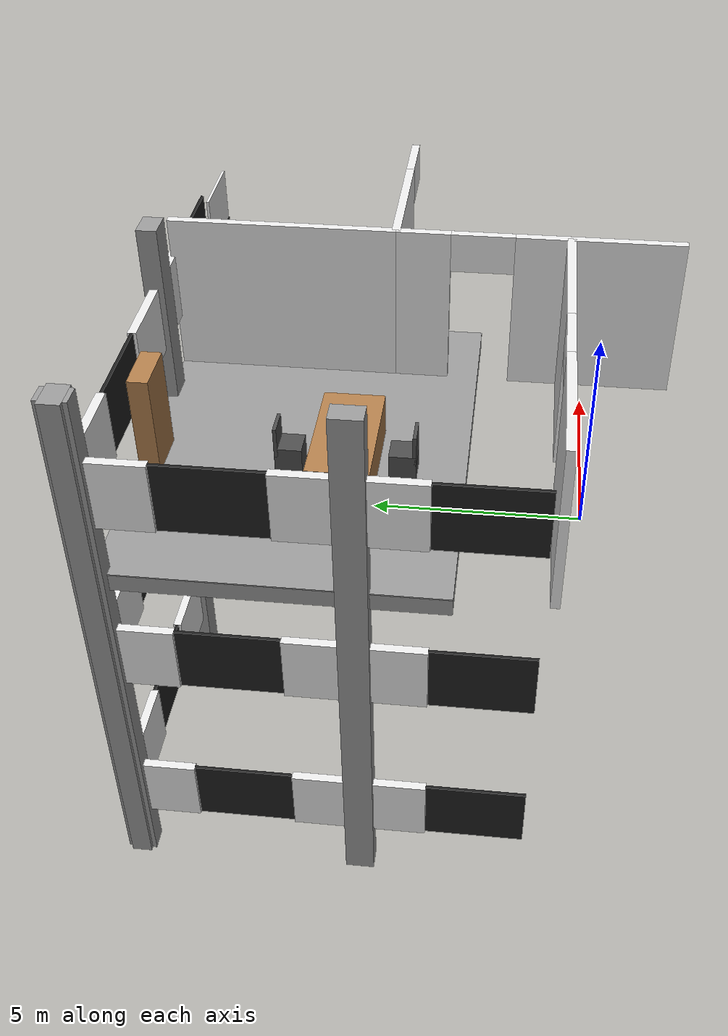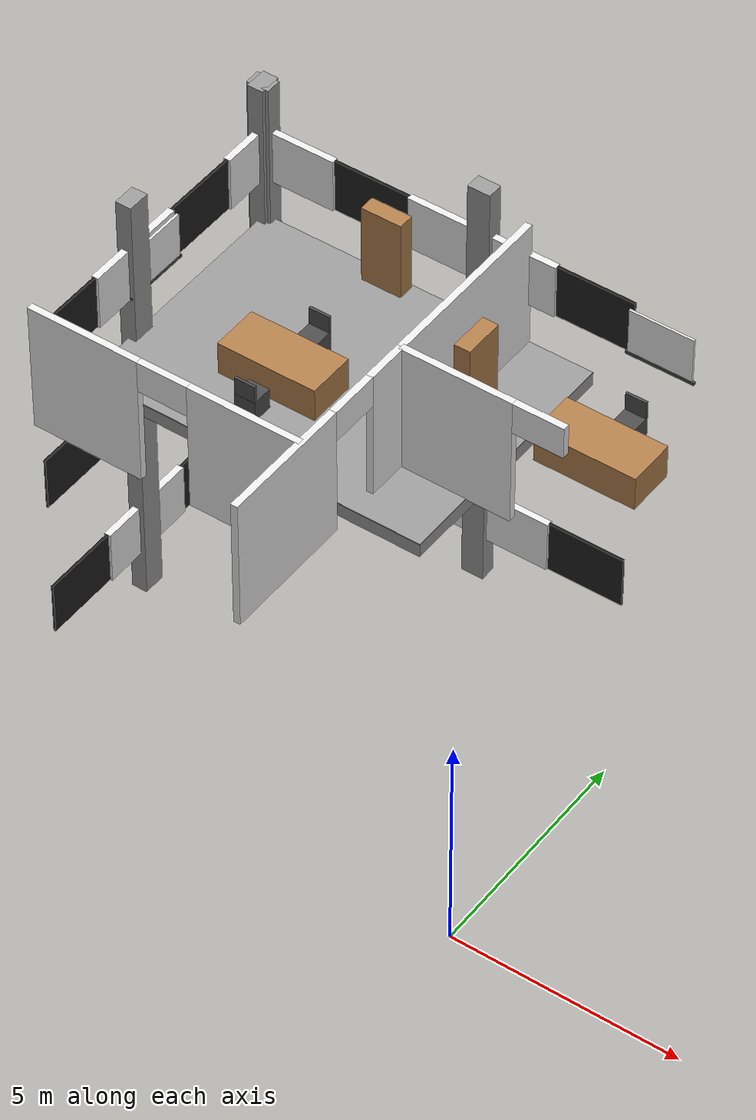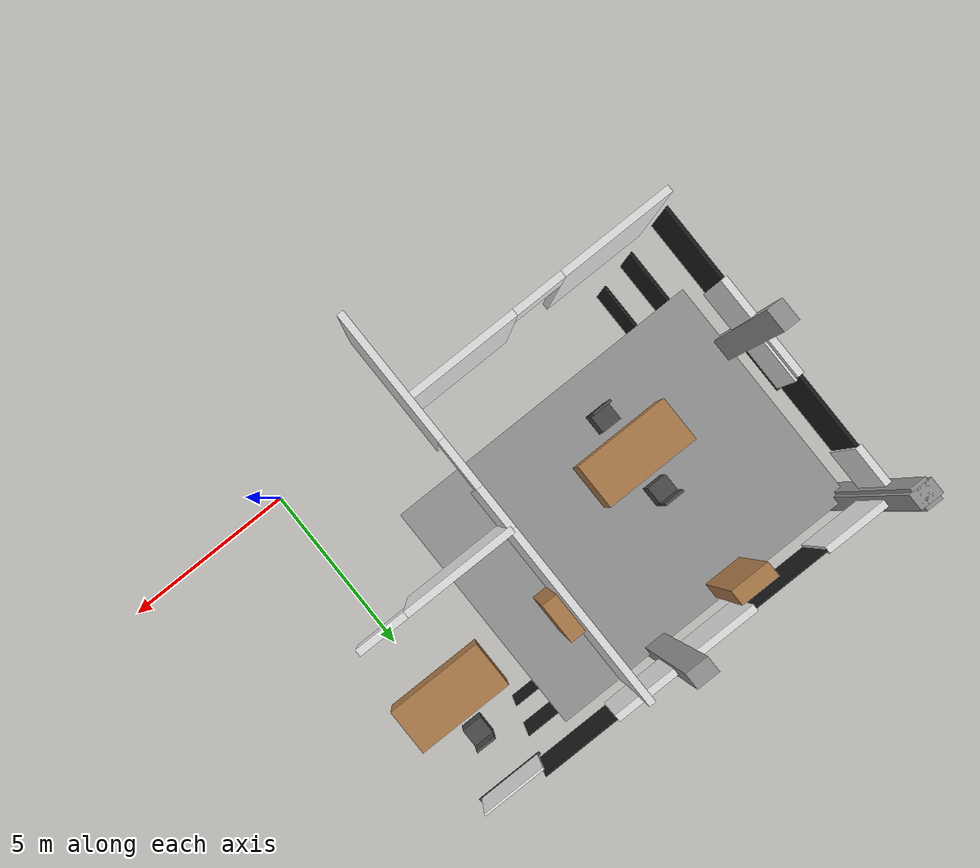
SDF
<sdf version="1.7">
 <world name="default">
  <model name="building_shell">
   <static>1</static>
   <link name="wNm0_0">
    <pose>-9.175 8 1.6 0 0 0</pose>
    <collision name="c"><geometry><box><size>1.65 0.15 1.2</size></box></geometry></collision>
    <visual name="v">
     <geometry><box><size>1.65 0.15 1.2</size></box></geometry>
     <material>
      <script><uri>file://media/materials/scripts/Gazebo.material</uri><name>Gazebo/White</name></script>
     </material>
    </visual>
   </link>
   <link name="wNm0_1">
    <pose>-5 8 1.6 0 0 0</pose>
    <collision name="c"><geometry><box><size>3.3 0.15 1.2</size></box></geometry></collision>
    <visual name="v">
     <geometry><box><size>3.3 0.15 1.2</size></box></geometry>
     <material>
      <script><uri>file://media/materials/scripts/Gazebo.material</uri><name>Gazebo/White</name></script>
     </material>
    </visual>
   </link>
   <link name="wNg0_0">
    <pose>-7.5 8 1.6 0 0 0</pose>
    <collision name="c"><geometry><box><size>1.7 0.05 1.2</size></box></geometry></collision>
    <visual name="v">
     <geometry><box><size>1.7 0.05 1.2</size></box></geometry>
     <material>
      <script><uri>file://media/materials/scripts/Gazebo.material</uri><name>Gazebo/FlatBlack</name></script>
     </material>
    </visual>
   </link>
   <link name="wNg0_1">
    <pose>-2.5 8 1.6 0 0 0</pose>
    <collision name="c"><geometry><box><size>1.7 0.05 1.2</size></box></geometry></collision>
    <visual name="v">
     <geometry><box><size>1.7 0.05 1.2</size></box></geometry>
     <material>
      <script><uri>file://media/materials/scripts/Gazebo.material</uri><name>Gazebo/FlatBlack</name></script>
     </material>
    </visual>
   </link>
   <link name="wNm1_0">
    <pose>-9.175 8 4.9 0 0 0</pose>
    <collision name="c"><geometry><box><size>1.65 0.15 1.2</size></box></geometry></collision>
    <visual name="v">
     <geometry><box><size>1.65 0.15 1.2</size></box></geometry>
     <material>
      <script><uri>file://media/materials/scripts/Gazebo.material</uri><name>Gazebo/White</name></script>
     </material>
    </visual>
   </link>
   <link name="wNm1_1">
    <pose>-5 8 4.9 0 0 0</pose>
    <collision name="c"><geometry><box><size>3.3 0.15 1.2</size></box></geometry></collision>
    <visual name="v">
     <geometry><box><size>3.3 0.15 1.2</size></box></geometry>
     <material>
      <script><uri>file://media/materials/scripts/Gazebo.material</uri><name>Gazebo/White</name></script>
     </material>
    </visual>
   </link>
   <link name="wNg1_0">
    <pose>-7.5 8 4.9 0 0 0</pose>
    <collision name="c"><geometry><box><size>1.7 0.05 1.2</size></box></geometry></collision>
    <visual name="v">
     <geometry><box><size>1.7 0.05 1.2</size></box></geometry>
     <material>
      <script><uri>file://media/materials/scripts/Gazebo.material</uri><name>Gazebo/FlatBlack</name></script>
     </material>
    </visual>
   </link>
   <link name="wNg1_1">
    <pose>-2.5 8 4.9 0 0 0</pose>
    <collision name="c"><geometry><box><size>1.7 0.05 1.2</size></box></geometry></collision>
    <visual name="v">
     <geometry><box><size>1.7 0.05 1.2</size></box></geometry>
     <material>
      <script><uri>file://media/materials/scripts/Gazebo.material</uri><name>Gazebo/FlatBlack</name></script>
     </material>
    </visual>
   </link>
   <link name="wNm2_0">
    <pose>-9.175 8 8.2 0 0 0</pose>
    <collision name="c"><geometry><box><size>1.65 0.15 1.2</size></box></geometry></collision>
    <visual name="v">
     <geometry><box><size>1.65 0.15 1.2</size></box></geometry>
     <material>
      <script><uri>file://media/materials/scripts/Gazebo.material</uri><name>Gazebo/White</name></script>
     </material>
    </visual>
   </link>
   <link name="wNm2_1">
    <pose>-5 8 8.2 0 0 0</pose>
    <collision name="c"><geometry><box><size>3.3 0.15 1.2</size></box></geometry></collision>
    <visual name="v">
     <geometry><box><size>3.3 0.15 1.2</size></box></geometry>
     <material>
      <script><uri>file://media/materials/scripts/Gazebo.material</uri><name>Gazebo/White</name></script>
     </material>
    </visual>
   </link>
   <link name="wNg2_0">
    <pose>-7.5 8 8.2 0 0 0</pose>
    <collision name="c"><geometry><box><size>1.7 0.05 1.2</size></box></geometry></collision>
    <visual name="v">
     <geometry><box><size>1.7 0.05 1.2</size></box></geometry>
     <material>
      <script><uri>file://media/materials/scripts/Gazebo.material</uri><name>Gazebo/FlatBlack</name></script>
     </material>
    </visual>
   </link>
   <link name="wNg2_1">
    <pose>-2.5 8 8.2 0 0 0</pose>
    <collision name="c"><geometry><box><size>1.7 0.05 1.2</size></box></geometry></collision>
    <visual name="v">
     <geometry><box><size>1.7 0.05 1.2</size></box></geometry>
     <material>
      <script><uri>file://media/materials/scripts/Gazebo.material</uri><name>Gazebo/FlatBlack</name></script>
     </material>
    </visual>
   </link>
   <link name="wNpil-10">
    <pose>-10 8 4.95 0 0 0</pose>
    <collision name="c"><geometry><box><size>0.5 0.35 9.9</size></box></geometry></collision>
    <visual name="v">
     <geometry><box><size>0.5 0.35 9.9</size></box></geometry>
     <material>
      <script><uri>file://media/materials/scripts/Gazebo.material</uri><name>Gazebo/Grey</name></script>
     </material>
    </visual>
   </link>
   <link name="wNpil-5">
    <pose>-5 8 4.95 0 0 0</pose>
    <collision name="c"><geometry><box><size>0.5 0.35 9.9</size></box></geometry></collision>
    <visual name="v">
     <geometry><box><size>0.5 0.35 9.9</size></box></geometry>
     <material>
      <script><uri>file://media/materials/scripts/Gazebo.material</uri><name>Gazebo/Grey</name></script>
     </material>
    </visual>
   </link>
   <link name="wWm0_3">
    <pose>-10 4 1.6 0 0 0</pose>
    <collision name="c"><geometry><box><size>0.15 2.3 1.2</size></box></geometry></collision>
    <visual name="v">
     <geometry><box><size>0.15 2.3 1.2</size></box></geometry>
     <material>
      <script><uri>file://media/materials/scripts/Gazebo.material</uri><name>Gazebo/White</name></script>
     </material>
    </visual>
   </link>
   <link name="wWm0_4">
    <pose>-10 7.425 1.6 0 0 0</pose>
    <collision name="c"><geometry><box><size>0.15 1.15 1.2</size></box></geometry></collision>
    <visual name="v">
     <geometry><box><size>0.15 1.15 1.2</size></box></geometry>
     <material>
      <script><uri>file://media/materials/scripts/Gazebo.material</uri><name>Gazebo/White</name></script>
     </material>
    </visual>
   </link>
   <link name="wWg0_2">
    <pose>-10 2 1.6 0 0 0</pose>
    <collision name="c"><geometry><box><size>0.05 1.7 1.2</size></box></geometry></collision>
    <visual name="v">
     <geometry><box><size>0.05 1.7 1.2</size></box></geometry>
     <material>
      <script><uri>file://media/materials/scripts/Gazebo.material</uri><name>Gazebo/FlatBlack</name></script>
     </material>
    </visual>
   </link>
   <link name="wWg0_3">
    <pose>-10 6 1.6 0 0 0</pose>
    <collision name="c"><geometry><box><size>0.05 1.7 1.2</size></box></geometry></collision>
    <visual name="v">
     <geometry><box><size>0.05 1.7 1.2</size></box></geometry>
     <material>
      <script><uri>file://media/materials/scripts/Gazebo.material</uri><name>Gazebo/FlatBlack</name></script>
     </material>
    </visual>
   </link>
   <link name="wWm1_3">
    <pose>-10 4 4.9 0 0 0</pose>
    <collision name="c"><geometry><box><size>0.15 2.3 1.2</size></box></geometry></collision>
    <visual name="v">
     <geometry><box><size>0.15 2.3 1.2</size></box></geometry>
     <material>
      <script><uri>file://media/materials/scripts/Gazebo.material</uri><name>Gazebo/White</name></script>
     </material>
    </visual>
   </link>
   <link name="wWm1_4">
    <pose>-10 7.425 4.9 0 0 0</pose>
    <collision name="c"><geometry><box><size>0.15 1.15 1.2</size></box></geometry></collision>
    <visual name="v">
     <geometry><box><size>0.15 1.15 1.2</size></box></geometry>
     <material>
      <script><uri>file://media/materials/scripts/Gazebo.material</uri><name>Gazebo/White</name></script>
     </material>
    </visual>
   </link>
   <link name="wWg1_2">
    <pose>-10 2 4.9 0 0 0</pose>
    <collision name="c"><geometry><box><size>0.05 1.7 1.2</size></box></geometry></collision>
    <visual name="v">
     <geometry><box><size>0.05 1.7 1.2</size></box></geometry>
     <material>
      <script><uri>file://media/materials/scripts/Gazebo.material</uri><name>Gazebo/FlatBlack</name></script>
     </material>
    </visual>
   </link>
   <link name="wWg1_3">
    <pose>-10 6 4.9 0 0 0</pose>
    <collision name="c"><geometry><box><size>0.05 1.7 1.2</size></box></geometry></collision>
    <visual name="v">
     <geometry><box><size>0.05 1.7 1.2</size></box></geometry>
     <material>
      <script><uri>file://media/materials/scripts/Gazebo.material</uri><name>Gazebo/FlatBlack</name></script>
     </material>
    </visual>
   </link>
   <link name="wWm2_3">
    <pose>-10 4 8.2 0 0 0</pose>
    <collision name="c"><geometry><box><size>0.15 2.3 1.2</size></box></geometry></collision>
    <visual name="v">
     <geometry><box><size>0.15 2.3 1.2</size></box></geometry>
     <material>
      <script><uri>file://media/materials/scripts/Gazebo.material</uri><name>Gazebo/White</name></script>
     </material>
    </visual>
   </link>
   <link name="wWm2_4">
    <pose>-10 7.425 8.2 0 0 0</pose>
    <collision name="c"><geometry><box><size>0.15 1.15 1.2</size></box></geometry></collision>
    <visual name="v">
     <geometry><box><size>0.15 1.15 1.2</size></box></geometry>
     <material>
      <script><uri>file://media/materials/scripts/Gazebo.material</uri><name>Gazebo/White</name></script>
     </material>
    </visual>
   </link>
   <link name="wWg2_2">
    <pose>-10 2 8.2 0 0 0</pose>
    <collision name="c"><geometry><box><size>0.05 1.7 1.2</size></box></geometry></collision>
    <visual name="v">
     <geometry><box><size>0.05 1.7 1.2</size></box></geometry>
     <material>
      <script><uri>file://media/materials/scripts/Gazebo.material</uri><name>Gazebo/FlatBlack</name></script>
     </material>
    </visual>
   </link>
   <link name="wWg2_3">
    <pose>-10 6 8.2 0 0 0</pose>
    <collision name="c"><geometry><box><size>0.05 1.7 1.2</size></box></geometry></collision>
    <visual name="v">
     <geometry><box><size>0.05 1.7 1.2</size></box></geometry>
     <material>
      <script><uri>file://media/materials/scripts/Gazebo.material</uri><name>Gazebo/FlatBlack</name></script>
     </material>
    </visual>
   </link>
   <link name="wWpil4">
    <pose>-10 4 4.95 0 0 0</pose>
    <collision name="c"><geometry><box><size>0.35 0.5 9.9</size></box></geometry></collision>
    <visual name="v">
     <geometry><box><size>0.35 0.5 9.9</size></box></geometry>
     <material>
      <script><uri>file://media/materials/scripts/Gazebo.material</uri><name>Gazebo/Grey</name></script>
     </material>
    </visual>
   </link>
   <link name="wWpil8">
    <pose>-10 8 4.95 0 0 0</pose>
    <collision name="c"><geometry><box><size>0.35 0.5 9.9</size></box></geometry></collision>
    <visual name="v">
     <geometry><box><size>0.35 0.5 9.9</size></box></geometry>
     <material>
      <script><uri>file://media/materials/scripts/Gazebo.material</uri><name>Gazebo/Grey</name></script>
     </material>
    </visual>
   </link>
  </model>
  <model name="building_L3">
   <static>1</static>
   <link name="floor2_4">
    <pose>-6.25 5.25 6.45 0 0 0</pose>
    <collision name="c"><geometry><box><size>7.5 5.5 0.3</size></box></geometry></collision>
    <visual name="v">
     <geometry><box><size>7.5 5.5 0.3</size></box></geometry>
     <material>
      <script><uri>file://media/materials/scripts/Gazebo.material</uri><name>Gazebo/Grey</name></script>
     </material>
    </visual>
   </link>
   <link name="floor2c_4">
    <pose>-6.25 5.25 6.61 0 0 0</pose>
    <collision name="c"><geometry><box><size>7.5 5.5 0.02</size></box></geometry></collision>
    <visual name="v">
     <geometry><box><size>7.5 5.5 0.02</size></box></geometry>
     <material>
      <script><uri>file://media/materials/scripts/Gazebo.material</uri><name>Gazebo/Grey</name></script>
     </material>
    </visual>
   </link>
   <link name="w2_0_0">
    <pose>-2.775 4 8.05 0 0 0</pose>
    <collision name="c"><geometry><box><size>2.45 0.15 2.9</size></box></geometry></collision>
    <visual name="v">
     <geometry><box><size>2.45 0.15 2.9</size></box></geometry>
     <material>
      <script><uri>file://media/materials/scripts/Gazebo.material</uri><name>Gazebo/White</name></script>
     </material>
    </visual>
   </link>
   <link name="w2_0_L0">
    <pose>-1 4 9.15 0 0 0</pose>
    <collision name="c"><geometry><box><size>1.1 0.15 0.7</size></box></geometry></collision>
    <visual name="v">
     <geometry><box><size>1.1 0.15 0.7</size></box></geometry>
     <material>
      <script><uri>file://media/materials/scripts/Gazebo.material</uri><name>Gazebo/White</name></script>
     </material>
    </visual>
   </link>
   <link name="w2_2_1">
    <pose>-4 0.5 8.05 0 0 0</pose>
    <collision name="c"><geometry><box><size>0.15 2.9 2.9</size></box></geometry></collision>
    <visual name="v">
     <geometry><box><size>0.15 2.9 2.9</size></box></geometry>
     <material>
      <script><uri>file://media/materials/scripts/Gazebo.material</uri><name>Gazebo/White</name></script>
     </material>
    </visual>
   </link>
   <link name="w2_2_2">
    <pose>-4 3.525 8.05 0 0 0</pose>
    <collision name="c"><geometry><box><size>0.15 0.95 2.9</size></box></geometry></collision>
    <visual name="v">
     <geometry><box><size>0.15 0.95 2.9</size></box></geometry>
     <material>
      <script><uri>file://media/materials/scripts/Gazebo.material</uri><name>Gazebo/White</name></script>
     </material>
    </visual>
   </link>
   <link name="w2_2_L0">
    <pose>-4 2.5 9.15 0 0 0</pose>
    <collision name="c"><geometry><box><size>0.15 1.1 0.7</size></box></geometry></collision>
    <visual name="v">
     <geometry><box><size>0.15 1.1 0.7</size></box></geometry>
     <material>
      <script><uri>file://media/materials/scripts/Gazebo.material</uri><name>Gazebo/White</name></script>
     </material>
    </visual>
   </link>
   <link name="w2_6_0">
    <pose>-4 6 8.05 0 0 0</pose>
    <collision name="c"><geometry><box><size>0.15 4 2.9</size></box></geometry></collision>
    <visual name="v">
     <geometry><box><size>0.15 4 2.9</size></box></geometry>
     <material>
      <script><uri>file://media/materials/scripts/Gazebo.material</uri><name>Gazebo/White</name></script>
     </material>
    </visual>
   </link>
   <link name="w2_9_0">
    <pose>-8.775 1 8.05 0 0 0</pose>
    <collision name="c"><geometry><box><size>2.45 0.15 2.9</size></box></geometry></collision>
    <visual name="v">
     <geometry><box><size>2.45 0.15 2.9</size></box></geometry>
     <material>
      <script><uri>file://media/materials/scripts/Gazebo.material</uri><name>Gazebo/White</name></script>
     </material>
    </visual>
   </link>
   <link name="w2_9_1">
    <pose>-5.225 1 8.05 0 0 0</pose>
    <collision name="c"><geometry><box><size>2.45 0.15 2.9</size></box></geometry></collision>
    <visual name="v">
     <geometry><box><size>2.45 0.15 2.9</size></box></geometry>
     <material>
      <script><uri>file://media/materials/scripts/Gazebo.material</uri><name>Gazebo/White</name></script>
     </material>
    </visual>
   </link>
   <link name="w2_9_L0">
    <pose>-7 1 9.15 0 0 0</pose>
    <collision name="c"><geometry><box><size>1.1 0.15 0.7</size></box></geometry></collision>
    <visual name="v">
     <geometry><box><size>1.1 0.15 0.7</size></box></geometry>
     <material>
      <script><uri>file://media/materials/scripts/Gazebo.material</uri><name>Gazebo/White</name></script>
     </material>
    </visual>
   </link>
   <link name="f2_N1mtt">
    <pose>-1 6 6.98 0 0 0</pose>
    <collision name="c"><geometry><box><size>2.2 1.05 0.76</size></box></geometry></collision>
    <visual name="v">
     <geometry><box><size>2.2 1.05 0.76</size></box></geometry>
     <material>
      <script><uri>file://media/materials/scripts/Gazebo.material</uri><name>Gazebo/Wood</name></script>
     </material>
    </visual>
   </link>
   <link name="f2_N1c3s">
    <pose>-1 6.95 6.84 0 0 0</pose>
    <collision name="c"><geometry><box><size>0.46 0.46 0.48</size></box></geometry></collision>
    <visual name="v">
     <geometry><box><size>0.46 0.46 0.48</size></box></geometry>
     <material>
      <script><uri>file://media/materials/scripts/Gazebo.material</uri><name>Gazebo/DarkGrey</name></script>
     </material>
    </visual>
   </link>
   <link name="f2_N1c3b">
    <pose>-1 7.15 7.2 0 0 0</pose>
    <collision name="c"><geometry><box><size>0.46 0.06 0.55</size></box></geometry></collision>
    <visual name="v">
     <geometry><box><size>0.46 0.06 0.55</size></box></geometry>
     <material>
      <script><uri>file://media/materials/scripts/Gazebo.material</uri><name>Gazebo/DarkGrey</name></script>
     </material>
    </visual>
   </link>
   <link name="f2_N1bsf">
    <pose>-3.75 6 7.5 0 0 0</pose>
    <collision name="c"><geometry><box><size>0.35 0.9 1.8</size></box></geometry></collision>
    <visual name="v">
     <geometry><box><size>0.35 0.9 1.8</size></box></geometry>
     <material>
      <script><uri>file://media/materials/scripts/Gazebo.material</uri><name>Gazebo/Wood</name></script>
     </material>
    </visual>
   </link>
   <link name="f2_N1bsb0">
    <pose>-3.75 6 7.05 0 0 0</pose>
    <collision name="c"><geometry><box><size>0.28 0.8 0.32</size></box></geometry></collision>
    <visual name="v">
     <geometry><box><size>0.28 0.8 0.32</size></box></geometry>
     <material>
      <script><uri>file://media/materials/scripts/Gazebo.material</uri><name>Gazebo/Grey</name></script>
     </material>
    </visual>
   </link>
   <link name="f2_N1bsb1">
    <pose>-3.75 6 7.55 0 0 0</pose>
    <collision name="c"><geometry><box><size>0.28 0.8 0.32</size></box></geometry></collision>
    <visual name="v">
     <geometry><box><size>0.28 0.8 0.32</size></box></geometry>
     <material>
      <script><uri>file://media/materials/scripts/Gazebo.material</uri><name>Gazebo/Grey</name></script>
     </material>
    </visual>
   </link>
   <link name="f2_N1bsb2">
    <pose>-3.75 6 8.05 0 0 0</pose>
    <collision name="c"><geometry><box><size>0.28 0.8 0.32</size></box></geometry></collision>
    <visual name="v">
     <geometry><box><size>0.28 0.8 0.32</size></box></geometry>
     <material>
      <script><uri>file://media/materials/scripts/Gazebo.material</uri><name>Gazebo/Grey</name></script>
     </material>
    </visual>
   </link>
   <link name="f2_N1wbw">
    <pose>-1 7.895 8.2 0 0 0</pose>
    <collision name="c"><geometry><box><size>1.4 0.05 1</size></box></geometry></collision>
    <visual name="v">
     <geometry><box><size>1.4 0.05 1</size></box></geometry>
     <material>
      <script><uri>file://media/materials/scripts/Gazebo.material</uri><name>Gazebo/White</name></script>
     </material>
    </visual>
   </link>
   <link name="f2_N1wbf">
    <pose>-1 7.895 7.65 0 0 0</pose>
    <collision name="c"><geometry><box><size>1.5 0.06 0.06</size></box></geometry></collision>
    <visual name="v">
     <geometry><box><size>1.5 0.06 0.06</size></box></geometry>
     <material>
      <script><uri>file://media/materials/scripts/Gazebo.material</uri><name>Gazebo/DarkGrey</name></script>
     </material>
    </visual>
   </link>
   <link name="f2_W1mtt">
    <pose>-7 4.5 6.98 0 0 0</pose>
    <collision name="c"><geometry><box><size>2.2 1.05 0.76</size></box></geometry></collision>
    <visual name="v">
     <geometry><box><size>2.2 1.05 0.76</size></box></geometry>
     <material>
      <script><uri>file://media/materials/scripts/Gazebo.material</uri><name>Gazebo/Wood</name></script>
     </material>
    </visual>
   </link>
   <link name="f2_W1c2s">
    <pose>-7 3.55 6.84 0 0 0</pose>
    <collision name="c"><geometry><box><size>0.46 0.46 0.48</size></box></geometry></collision>
    <visual name="v">
     <geometry><box><size>0.46 0.46 0.48</size></box></geometry>
     <material>
      <script><uri>file://media/materials/scripts/Gazebo.material</uri><name>Gazebo/DarkGrey</name></script>
     </material>
    </visual>
   </link>
   <link name="f2_W1c2b">
    <pose>-7 3.35 7.2 0 0 0</pose>
    <collision name="c"><geometry><box><size>0.46 0.06 0.55</size></box></geometry></collision>
    <visual name="v">
     <geometry><box><size>0.46 0.06 0.55</size></box></geometry>
     <material>
      <script><uri>file://media/materials/scripts/Gazebo.material</uri><name>Gazebo/DarkGrey</name></script>
     </material>
    </visual>
   </link>
   <link name="f2_W1c3s">
    <pose>-7 5.45 6.84 0 0 0</pose>
    <collision name="c"><geometry><box><size>0.46 0.46 0.48</size></box></geometry></collision>
    <visual name="v">
     <geometry><box><size>0.46 0.46 0.48</size></box></geometry>
     <material>
      <script><uri>file://media/materials/scripts/Gazebo.material</uri><name>Gazebo/DarkGrey</name></script>
     </material>
    </visual>
   </link>
   <link name="f2_W1c3b">
    <pose>-7 5.65 7.2 0 0 0</pose>
    <collision name="c"><geometry><box><size>0.46 0.06 0.55</size></box></geometry></collision>
    <visual name="v">
     <geometry><box><size>0.46 0.06 0.55</size></box></geometry>
     <material>
      <script><uri>file://media/materials/scripts/Gazebo.material</uri><name>Gazebo/DarkGrey</name></script>
     </material>
    </visual>
   </link>
   <link name="f2_W1bsf">
    <pose>-7 7.75 7.5 0 0 0</pose>
    <collision name="c"><geometry><box><size>0.9 0.35 1.8</size></box></geometry></collision>
    <visual name="v">
     <geometry><box><size>0.9 0.35 1.8</size></box></geometry>
     <material>
      <script><uri>file://media/materials/scripts/Gazebo.material</uri><name>Gazebo/Wood</name></script>
     </material>
    </visual>
   </link>
   <link name="f2_W1bsb0">
    <pose>-7 7.75 7.05 0 0 0</pose>
    <collision name="c"><geometry><box><size>0.8 0.28 0.32</size></box></geometry></collision>
    <visual name="v">
     <geometry><box><size>0.8 0.28 0.32</size></box></geometry>
     <material>
      <script><uri>file://media/materials/scripts/Gazebo.material</uri><name>Gazebo/Grey</name></script>
     </material>
    </visual>
   </link>
   <link name="f2_W1bsb1">
    <pose>-7 7.75 7.55 0 0 0</pose>
    <collision name="c"><geometry><box><size>0.8 0.28 0.32</size></box></geometry></collision>
    <visual name="v">
     <geometry><box><size>0.8 0.28 0.32</size></box></geometry>
     <material>
      <script><uri>file://media/materials/scripts/Gazebo.material</uri><name>Gazebo/Grey</name></script>
     </material>
    </visual>
   </link>
   <link name="f2_W1bsb2">
    <pose>-7 7.75 8.05 0 0 0</pose>
    <collision name="c"><geometry><box><size>0.8 0.28 0.32</size></box></geometry></collision>
    <visual name="v">
     <geometry><box><size>0.8 0.28 0.32</size></box></geometry>
     <material>
      <script><uri>file://media/materials/scripts/Gazebo.material</uri><name>Gazebo/Grey</name></script>
     </material>
    </visual>
   </link>
   <link name="f2_W1wbw">
    <pose>-9.895 4.5 8.2 0 0 0</pose>
    <collision name="c"><geometry><box><size>0.05 1.4 1</size></box></geometry></collision>
    <visual name="v">
     <geometry><box><size>0.05 1.4 1</size></box></geometry>
     <material>
      <script><uri>file://media/materials/scripts/Gazebo.material</uri><name>Gazebo/White</name></script>
     </material>
    </visual>
   </link>
   <link name="f2_W1wbf">
    <pose>-9.895 4.5 7.65 0 0 0</pose>
    <collision name="c"><geometry><box><size>0.06 1.5 0.06</size></box></geometry></collision>
    <visual name="v">
     <geometry><box><size>0.06 1.5 0.06</size></box></geometry>
     <material>
      <script><uri>file://media/materials/scripts/Gazebo.material</uri><name>Gazebo/DarkGrey</name></script>
     </material>
    </visual>
   </link>
  </model>
 </world>
</sdf>
